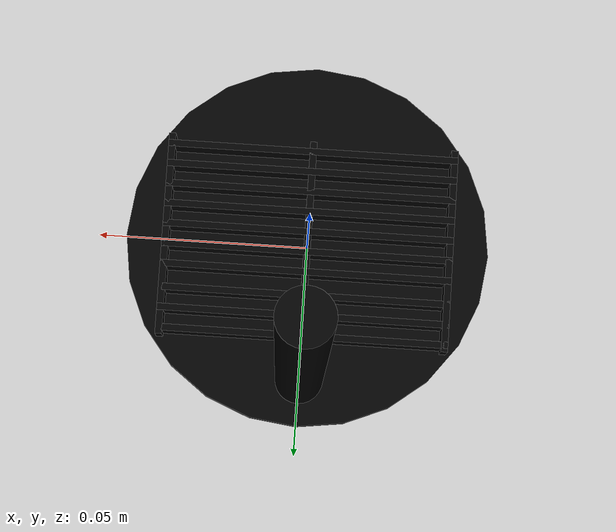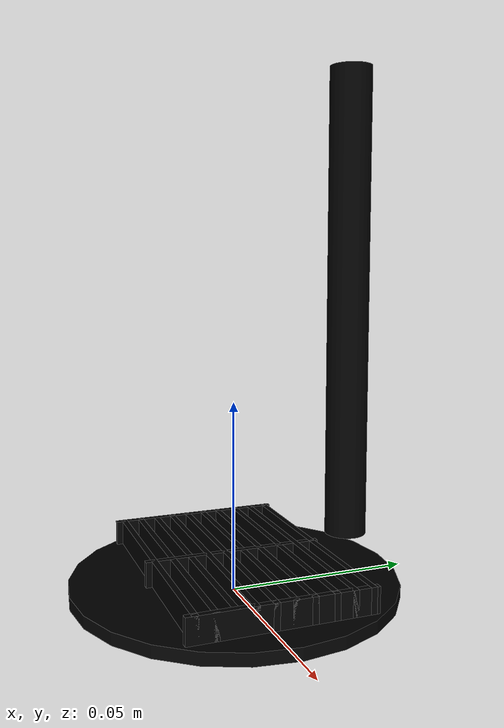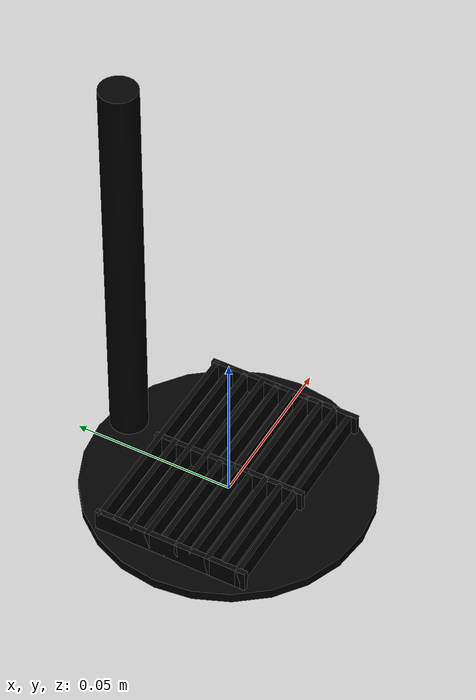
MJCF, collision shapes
<mujoco model="glassSheet">

  <compiler angle="radian" meshdir="../../assets" />

  <asset>

    <mesh name="glass_sheet_mesh" file="glassSheet/base.obj" scale="0.080000 0.080000 0.080000" />
    <texture name="glass_diffuse" type="2d" file="../../assets/glassSheet/texture_diffuse.png" />

    <material name="glass_material" texture="glass_diffuse" rgba="1 0 0 1" />
  </asset>

  <worldbody>
    <body name="glass_sheet" euler="1.5708 0 0">

      <geom name="glass_sheet_visual" type="mesh" mesh="glass_sheet_mesh" material="glass_material" contype="0" rgba="0.9 0.9 0.9 1" conaffinity="0" />

      <geom name="glass_sheet_collision_1" type="cylinder" size="0.005600 0.062800" pos="0.000000 0.074400 -0.032800" euler="1.5708 0 0" contype="1" conaffinity="1" friction="0.6 0.2 0.001" rgba="0 0 0 0" />
      <geom name="glass_sheet_collision_2" type="cylinder" size="0.043200 0.001600" pos="0.000000 0.002400 0.000000" euler="1.5708 0 0" contype="1" conaffinity="1" friction="0.6 0.2 0.001" rgba="0 0 0 0" />

      <geom name="ring_1" type="box" size="0.034400 0.003360 0.000800" pos="0.000000 0.007280 0.002400" contype="1" conaffinity="1" rgba="0 0 0 0" />
      <geom name="ring_2" type="box" size="0.034400 0.003360 0.000800" pos="0.000000 0.007280 0.007200" contype="1" conaffinity="1" rgba="0 0 0 0" />
      <geom name="ring_3" type="box" size="0.034400 0.003360 0.000800" pos="0.000000 0.007280 0.012000" contype="1" conaffinity="1" rgba="0 0 0 0" />
      <geom name="ring_4" type="box" size="0.034400 0.003360 0.000800" pos="0.000000 0.007280 0.016800" contype="1" conaffinity="1" rgba="0 0 0 0" />
      <geom name="ring_5" type="box" size="0.034400 0.003360 0.000800" pos="0.000000 0.007280 0.021600" contype="1" conaffinity="1" rgba="0 0 0 0" />
      <geom name="ring_6" type="box" size="0.034400 0.003360 0.000800" pos="0.000000 0.007280 -0.022400" contype="1" conaffinity="1" rgba="0 0 0 0" />
      <geom name="ring_7" type="box" size="0.034400 0.003360 0.000800" pos="0.000000 0.007280 -0.007200" contype="1" conaffinity="1" rgba="0 0 0 0" />
      <geom name="ring_8" type="box" size="0.034400 0.003360 0.000800" pos="0.000000 0.007280 -0.002400" contype="1" conaffinity="1" rgba="0 0 0 0" />
      <geom name="ring_9" type="box" size="0.034400 0.003360 0.000800" pos="0.000000 0.007280 -0.012800" contype="1" conaffinity="1" rgba="0 0 0 0" />
      <geom name="ring_10" type="box" size="0.034400 0.003360 0.000800" pos="0.000000 0.007280 -0.017600" contype="1" conaffinity="1" rgba="0 0 0 0" />
      <geom name="ring_11" type="box" size="0.000800 0.003360 0.024000" pos="0.000000 0.007280 0.000000" contype="1" conaffinity="1" rgba="0 0 0 0" />
      <geom name="ring_12" type="box" size="0.000800 0.003360 0.024000" pos="0.033600 0.007280 0.000000" contype="1" conaffinity="1" rgba="0 0 0 0" />
      <geom name="ring_13" type="box" size="0.000800 0.003360 0.024000" pos="-0.033600 0.007280 0.000000" contype="1" conaffinity="1" rgba="0 0 0 0" />

    </body>
  </worldbody>
</mujoco>
